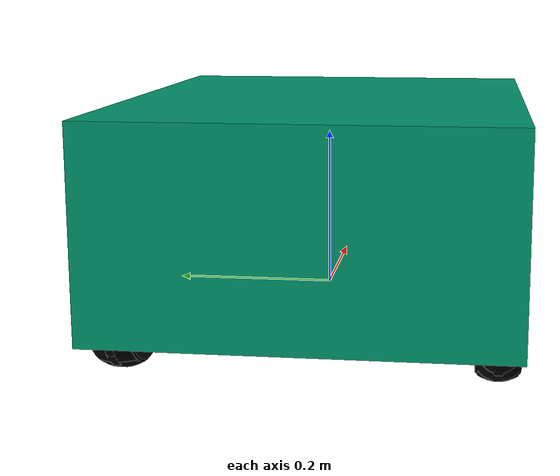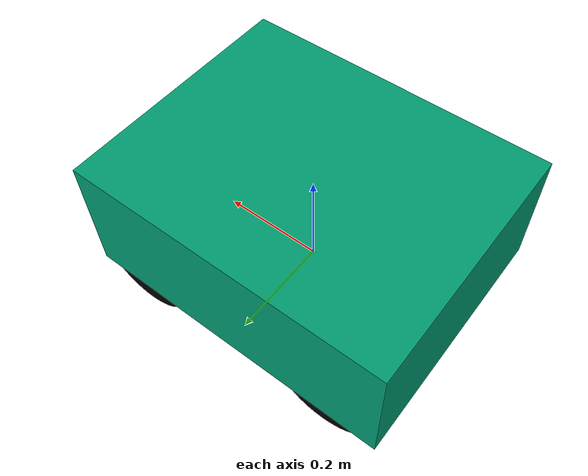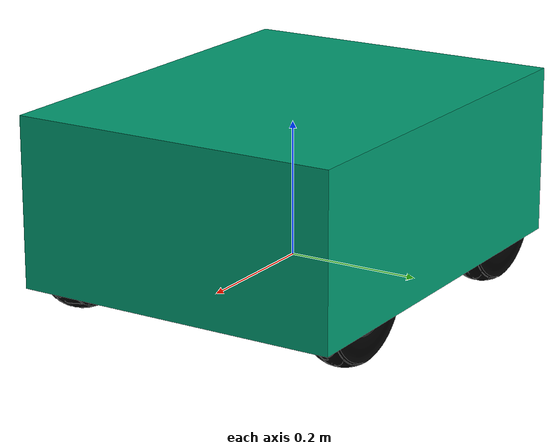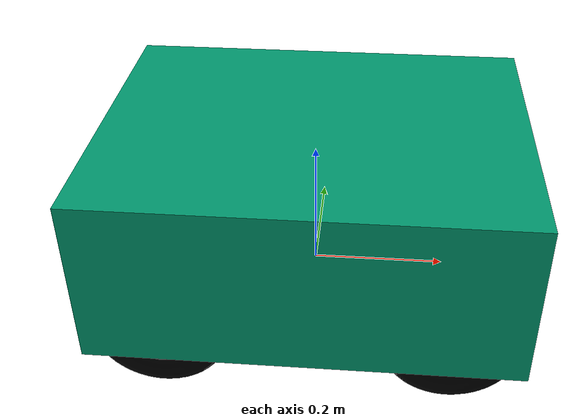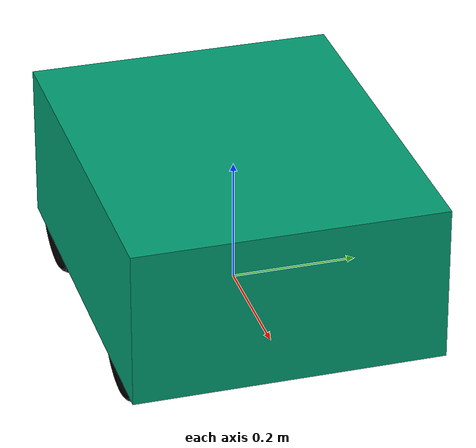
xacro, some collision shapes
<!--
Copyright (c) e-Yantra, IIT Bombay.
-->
<?xml version="1.0"?>

<robot name="ebot" xmlns:xacro="http://www.ros.org/wiki/xacro">
 <xacro:include filename="$(find ebot_description)/models/ebot/ebot.gazebo" />

  <xacro:property name="base_mass" value="46.034" />
  <xacro:property name="wheel_mass" value="2.637" />

  <xacro:macro name="box_inertia" params="b_mass b_x b_y b_z">
    <mass value="${b_mass}" />
    <inertia ixx="${b_mass*(b_y*b_y+b_z*b_z)/12}" ixy="0" ixz="0"
      iyy="${b_mass*(b_x*b_x+b_z*b_z)/12}" iyz="0"
      izz="${b_mass*(b_x*b_x+b_y*b_y)/12}" />
  </xacro:macro>

  <xacro:macro name="cylinder_inertia" params="c_mass r l">
    <mass value="${c_mass}" />
    <inertia ixx="${c_mass*(3*r*r+l*l)/12}" ixy="0" ixz="0"
      iyy="${c_mass*(r*r)/2}" iyz="0"
      izz="${c_mass*(3*r*r+l*l)/12}" />
  </xacro:macro>

  <link name="ebot_base_link"></link>

  <joint name="base_footprint_joint" type="fixed">
    <parent link="ebot_base_link" />
    <child link="base_footprint" />
    <origin xyz="0.0 0.0 0.0" rpy="0.0 0.0 0.0" />
  </joint>

  <link name="base_footprint"></link>

  <joint name="base_link_ebot_base_joint" type="fixed">
    <parent link="ebot_base_link" />
    <child link="ebot_base" />
    <origin xyz="0.0 0.0 0.0" rpy="0.0 0.0 0.0" />
  </joint>

  <link
    name="ebot_base">
    <inertial>
      <origin xyz="0 0.0 0.12" rpy="0 0 0" />
      <xacro:box_inertia b_mass="${base_mass}" b_x="0.585" b_y="0.30" b_z="0.25" />
    </inertial>
    <visual>
      <origin
        xyz="0 0 0"
        rpy="0 0 0" />
      <geometry>
          <mesh
          filename="file://$(find ebot_description)/meshes/chassis.glb" />

      </geometry>

    </visual>
    <collision>
      <origin
        xyz="0 0.0 0.12"
        rpy="0 0 0" />
      <geometry>
        <box size="0.62 0.49 0.25" />
      </geometry>
    </collision>
    <collision>
      <origin
        xyz="0 0.0 0.457521"
        rpy="0 0 0" />
      <geometry>
        <box size="0.35 0.29 0.435" />
      </geometry>
    </collision>
  </link>

  <xacro:property name="wheel_inertia">
    <xacro:cylinder_inertia c_mass="${wheel_mass}" r="0.1" l="0.05" />
  </xacro:property>

  <!-- Front wheel, right -->
<link
    name="FWR">
    <inertial>
      <origin
        xyz="6.6592E-05 0.025016 -1.3483E-06"
        rpy="0 0 0" />
      <xacro:insert_block name="wheel_inertia" />

    </inertial>

    <visual>
      <origin
        xyz="0 0 0"
        rpy="0 0 0" />
      <geometry>
        <mesh
          filename="file://$(find ebot_description)/meshes/FWR.STL" />
      </geometry>
      <material
        name="">
        <color
          rgba="0 0 0 1" />
      </material>
    </visual>

    <collision>
      <origin
        xyz="0 0.025 0"
        rpy="1.5707963267948966 0 0" />
      <geometry>
        <cylinder length="0.05" radius="0.1" />

      </geometry>
    </collision>
  </link>

  <joint
    name="FWRJ"
    type="continuous">
    <origin
      xyz="0.202539503068943 -0.189027702306049 0.0449999999999943"
      rpy="-3.14159265358979 0.911096362238563 0.00679706827343889" />
    <parent
      link="ebot_base" />
    <child
      link="FWR" />
    <axis
      xyz="0 -1 0" />
  </joint>

  <!-- Front wheel, left -->
  <link
    name="FWL">
    <inertial>
      <origin
        xyz="6.6594E-05 0.025016 -1.349E-06"
        rpy="0 0 0" />
      <xacro:insert_block name="wheel_inertia" />
    </inertial>
    <visual>
      <origin
        xyz="0 0 0"
        rpy="0 0 0" />
      <geometry>
        <mesh
          filename="file://$(find ebot_description)/meshes/FWL.STL" />
      </geometry>
      <material
        name="">
        <color
          rgba="0 0 0 1" />
      </material>
    </visual>
    <collision>
      <origin
        xyz="0 0.025 0"
        rpy="1.5707963267948966 1.5707963267948966 0" />
      <geometry>
        <cylinder length="0.05" radius="0.1" />
      </geometry>
    </collision>
  </link>
  <joint
    name="FWLJ"
    type="continuous">
    <origin
      xyz="0.199948480594093 0.192163491981716 0.0450000000000047"
      rpy="0 0 0.00679706827344463" />
    <parent
      link="ebot_base" />
    <child
      link="FWL" />
    <axis
      xyz="0 1 0" />
  </joint>
 <!-- Rear wheel, right -->
  <link
    name="RWR">
    <inertial>
      <origin
        xyz="6.6592E-05 0.025016 -1.3483E-06"
        rpy="0 0 0" />
      <xacro:insert_block name="wheel_inertia" />
    </inertial>
    <visual>
      <origin
        xyz="0 0 0"
        rpy="0 0 0" />
      <geometry>
        <mesh
          filename="file://$(find ebot_description)/meshes/RWR.STL" />
      </geometry>
      <material
        name="">
        <color
          rgba="0 0 0 1" />
      </material>
    </visual>
    <collision>
      <origin
        xyz="0 0.025 0"
        rpy="1.5707963267948966 1.5707963267948966 0" />
      <geometry>
        <cylinder length="0.05" radius="0.1" />
      </geometry>
    </collision>
  </link>
  <joint
    name="RWRJ"
    type="continuous">
    <origin
      xyz="-0.197451256939211 -0.191746508680447 0.044999999999993"
      rpy="-3.14159265358979 0.544912084409921 0.00679706827344312" />
    <parent
      link="ebot_base" />
    <child
      link="RWR" />
    <axis
      xyz="0 -1 0" />
  </joint>

  <!-- Rear wheel, left -->
  <link
    name="RWL">
    <inertial>
      <origin
        xyz="6.6594E-05 0.025016 -1.349E-06"
        rpy="0 0 0" />
      <xacro:insert_block name="wheel_inertia" />
    </inertial>
    <visual>
      <origin
        xyz="0 0 0"
        rpy="0 0 0" />
      <geometry>
        <mesh
          filename="file://$(find ebot_description)/meshes/RWL.STL" />
      </geometry>
      <material
        name="">
        <color
          rgba="0 0 0 1" />
      </material>
    </visual>
    <collision>
      <origin
        xyz="0 0.025 0"
        rpy="1.5707963267948966 1.5707963267948966 0" />
      <geometry>
        <cylinder length="0.05" radius="0.1" />
      </geometry>
    </collision>
  </link>
  <joint
    name="RWLJ"
    type="continuous">
    <origin
      xyz="-0.200042279414009 0.189444685607321 0.0449999999999969"
      rpy="0 0 0.00679706827344463" />
    <parent
      link="ebot_base" />
    <child
      link="RWL" />
    <axis
      xyz="0 1 0" />
  </joint>

  <!-- LIDAR -->
  <link name="laser">
    <origin rpy="0 0 0" xyz="0 0 0" />
    <visual>
      <origin rpy="0 0 0" xyz="0 0 0" />
      <geometry>
        <cylinder length="0.040" radius="0.030" />
      </geometry>
    </visual>
  </link>

  <joint name="rplidar_joint" type="fixed">
    <axis xyz="0 1 0" />
    <origin xyz="0.255540836099039 0 0.18"
      rpy="0 0 0.00679706827344463" />

    <parent link="ebot_base" />
    <child link="laser" />
    <limit effort="1000" lower="0" upper="6.28" velocity="100" />
    <axis rpy="0 0 0" xyz="0.02 0 0.178" />
    <joint_properties damping="5.0" friction="1.0" />
  </joint>
 <!-- Front housing 1 (visual only) -->
  <link
    name="FUS1">
    <visual>
      <origin
        xyz="0 0 0"
        rpy="0 0 0" />
      <geometry>
        <mesh
          filename="file://$(find ebot_description)/meshes/FUS1.STL" />
      </geometry>
      <material
        name="">
        <color
          rgba="0.250980392156863 0.250980392156863 0.250980392156863 1" />
      </material>
    </visual>
  </link>
  <joint
    name="FUS1J"
    type="fixed">
    <origin
      xyz="0.297825909825268 -0.157279305693451 0.0977263808983278"
      rpy="-1.5707963267949 0 0.00679706827344463" />
    <parent
      link="ebot_base" />
    <child
      link="FUS1" />
    <axis
      xyz="0 0 0" />
  </joint>
 <!-- Front housing 2 (visual only) -->
  <link
    name="FUS2">
    <visual>
      <origin
        xyz="0 0 0"
        rpy="0 0 0" />
      <geometry>
        <mesh
          filename="file://$(find ebot_description)/meshes/FUS2.STL" />
      </geometry>
      <material
        name="">
        <color
          rgba="0.25098 0.25098 0.25098 1" />
      </material>
    </visual>
  </link>
  <joint
    name="FUS2J"
    type="fixed">
    <origin
      xyz="0.295786805044471 0.142713764312663 0.0977263808983286"
      rpy="-1.5707963267949 0 0.00679706827344463" />
    <parent
      link="ebot_base" />
    <child
      link="FUS2" />
    <axis
      xyz="0 0 0" />
  </joint>

  <!-- Front housing 3 (visual only) -->
  <link
    name="FUS3">
    <visual>
      <origin
        xyz="0 0 0"
        rpy="0 0 0" />
      <geometry>
        <mesh
          filename="file://$(find ebot_description)/meshes/FUS3.STL" />
      </geometry>
      <material
        name="">
        <color
          rgba="0.25098 0.25098 0.25098 1" />
      </material>
    </visual>
  </link>
  <joint
    name="FUS3J"
    type="fixed">
    <origin
      xyz="0.27274874909921 -0.0749478536996718 0.0424745013517897"
      rpy="0 0.785398163397449 0.00679706827344116" />
    <parent
      link="ebot_base" />
    <child
      link="FUS3" />
    <axis
      xyz="0 0 0" />
  </joint>

  <!-- Front housing 4 (visual only) -->
  <link
    name="FUS4">
    <visual>
      <origin
        xyz="0 0 0"
        rpy="0 0 0" />
      <geometry>
        <mesh
          filename="file://$(find ebot_description)/meshes/FUS4.STL" />
      </geometry>
      <material
        name="">
        <color
          rgba="0.250980392156863 0.250980392156863 0.250980392156863 1" />
      </material>
    </visual>
  </link>
  <joint
    name="FUS4J"
    type="fixed">
    <origin
      xyz="0.271702008645067 0.0790485889034664 0.0424745013517894"
      rpy="0 0.785398163397449 0.00679706827344116" />
    <parent
      link="ebot_base" />
    <child
      link="FUS4" />
    <axis
      xyz="0 0 0" />
  </joint>

  <!-- Rear left: sensor on /ultrasonic_rl/data -->
  <link
    name="ultrasonic_rl">
    <visual>
      <origin
        xyz="0 0 0"
        rpy="0 0 0" />
      <geometry>
        <mesh
          filename="file://$(find ebot_description)/meshes/RUS5.STL" />
      </geometry>
      <material
        name="">
        <color
          rgba="0.25098 0.25098 0.25098 1" />
      </material>
    </visual>
  </link>
  <joint
    name="RUS5J"
    type="fixed">
    <origin
      xyz="-0.29532868617037 0.157696288994793 0.0977029437251515"
      rpy="-1.5707963267949 0 -3.13479558531634" />
    <parent
      link="ebot_base" />
    <child
      link="ultrasonic_rl" />
    <axis
      xyz="0 0 0" />
  </joint>

  <!-- Rear right: sensor on /ultrasonic_rr/data -->
  <link
    name="ultrasonic_rr">
    <visual>
      <origin
        xyz="0 0 0"
        rpy="0 0 0" />
      <geometry>
        <mesh
          filename="file://$(find ebot_description)/meshes/RUS6.STL" />
      </geometry>
      <material
        name="">
        <color
          rgba="0.250980392156863 0.250980392156863 0.250980392156863 1" />
      </material>
    </visual>
  </link>
  <joint
    name="RUS6J"
    type="fixed">
    <origin
      xyz="-0.293289581389573 -0.14229678101132 0.0977029437251508"
      rpy="-1.5707963267949 0 -3.13479558531634" />
    <parent
      link="ebot_base" />
    <child
      link="ultrasonic_rr" />
    <axis
      xyz="0 0 0" />
  </joint>

  <!-- Right housing, front (visual only) -->
  <link
    name="RHUS7">
    <visual>
      <origin
        xyz="0 0 0"
        rpy="0 0 0" />
      <geometry>
        <mesh
          filename="file://$(find ebot_description)/meshes/RHUS7.STL" />
      </geometry>
      <material
        name="">
        <color
          rgba="0.250980392156863 0.250980392156863 0.250980392156863 1" />
      </material>
    </visual>
  </link>
  <joint
    name="RHUS7J"
    type="fixed">
    <origin
      xyz="-0.17860231149778 -0.148017381955971 0.189449821416576"
      rpy="0 0 -1.56399925852145" />
    <parent
      link="ebot_base" />
    <child
      link="RHUS7" />
    <axis
      xyz="0 0 0" />
  </joint>

  <!-- Right housing, rear (visual only) -->
  <link
    name="RHUS9">
    <visual>
      <origin
        xyz="0 0 0"
        rpy="0 0 0" />
      <geometry>
        <mesh
          filename="file://$(find ebot_description)/meshes/RHUS9.STL" />
      </geometry>
      <material
        name="">
        <color
          rgba="0.25098 0.25098 0.25098 1" />
      </material>
    </visual>
  </link>
  <joint
    name="RHUS9J"
    type="fixed">
    <origin
      xyz="0.141804076845343 -0.0977216096162414 0.196076309026378"
      rpy="-0.00186883076605492 0.123098458475999 -0.786255211903501" />
    <parent
      link="ebot_base" />
    <child
      link="RHUS9" />
    <axis
      xyz="0 0 0" />
  </joint>

  <!-- Left housing, rear (visual only) -->
  <link
    name="LHUS9">
    <visual>
      <origin
        xyz="0 0 0"
        rpy="0 0 0" />
      <geometry>
        <mesh
          filename="file://$(find ebot_description)/meshes/LHUS9.STL" />
      </geometry>
      <material
        name="">
        <color
          rgba="0.250980392156863 0.250980392156863 0.250980392156863 1" />
      </material>
    </visual>
  </link>
  <joint
    name="LHUS9J"
    type="fixed">
    <origin
      xyz="-0.180600634182961 0.14597582665002 0.189449821416576"
      rpy="0 0 1.57759339506834" />
    <parent
      link="ebot_base" />
    <child
      link="LHUS9" />
    <axis
      xyz="0 0 0" />
  </joint>

  <!-- Left housing, front (visual only) -->
  <link
    name="LHUS10">
    <visual>
      <origin
        xyz="0 0 0"
        rpy="0 0 0" />
      <geometry>
        <mesh
          filename="file://$(find ebot_description)/meshes/LHUS10.STL" />
      </geometry>
      <material
        name="">
        <color
          rgba="0.25098 0.25098 0.25098 1" />
      </material>
    </visual>
  </link>
  <joint
    name="LHUS10J"
    type="fixed">
    <origin
      xyz="0.14045985551618 0.10004021562239 0.196076309026377"
      rpy="0.00186883076604301 0.123098458475999 0.799849348450393" />
    <parent
      link="ebot_base" />
    <child
      link="LHUS10" />
    <axis
      xyz="0 0 0" />
  </joint>
  <!-- IMU -->
  <link name="imu_link">
    <visual>
      <origin xyz="0 0 0" rpy="0 0 0" />
      <geometry>
        <box size="0.02 0.015 0.008" />
      </geometry>
    </visual>
  </link>

  <joint
    name="imujoint"
    type="fixed">
    <origin
      xyz="0 0 0.2"
      rpy="0 0 0" />
    <parent
      link="ebot_base" />
    <child
      link="imu_link" />
    <axis
      xyz="0 0 0" />
  </joint>
</robot>
